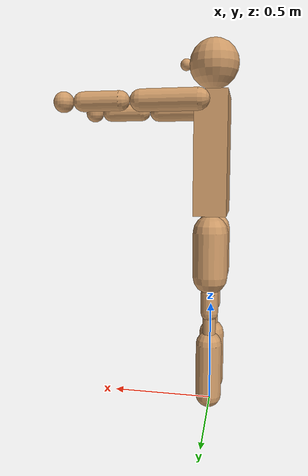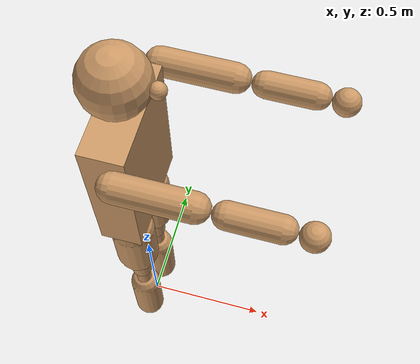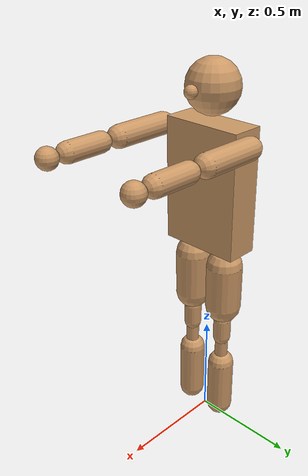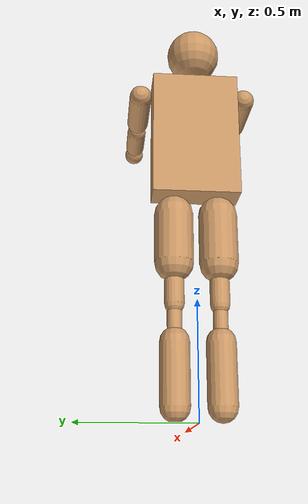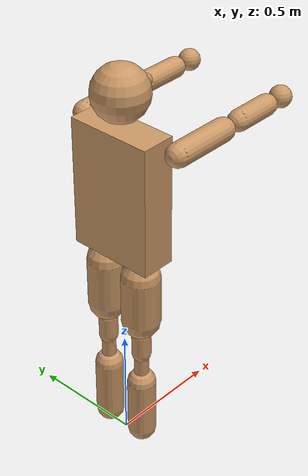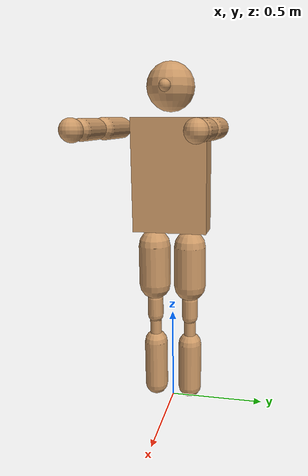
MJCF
<mujoco model='flyer'>
    <compiler inertiafromgeom='true' angle='degree'/>

    <default>
        <joint limited='true' damping='0'  armature='0' />
        <geom contype='1' conaffinity='1' condim='1' rgba='0.8 0.6 .4 1'
        	margin="0.001" solref=".02 1" solimp=".8 .8 .01" material="geom"/>
        <motor ctrlrange='-.4 .4' ctrllimited='true'/>
    </default>

    <option timestep='0.002' iterations="50" solver="PGS">
        <flag energy="enable"/>
    </option>

    <visual>
        <map fogstart="3" fogend="5" force="0.1"/>
        <quality shadowsize="2048"/>
    </visual>

    <asset>
        <texture type="skybox" builtin="gradient" width="100" height="100" rgb1=".4 .6 .8"
            rgb2="0 0 0"/>
        <texture name="texgeom" type="cube" builtin="flat" mark="cross" width="127" height="1278"
            rgb1="0.8 0.6 0.4" rgb2="0.8 0.6 0.4" markrgb="1 1 1" random="0.01"/>
        <texture name="texplane" type="2d" builtin="checker" rgb1=".2 .3 .4" rgb2=".1 0.15 0.2"
            width="100" height="100"/>

        <material name='MatPlane' reflectance='0.5' texture="texplane" texrepeat="1 1" texuniform="true"/>
        <material name='geom' texture="texgeom" texuniform="true"/>
        <material name='nose' rbga='1 0 0 1' />
    </asset>

    <worldbody>
        <body name='torso' pos='0 0 1.248'>
            <geom name='torso' type='box' size='0.0768 0.192 0.288'/>
            <geom name='head' type='sphere' pos='0 0 0.432' size='0.12' />
            <geom name='nose' type='sphere' pos='0.1344 0 0.432' size='0.0288' material='nose' />
            <body name='l_thigh' pos='0 0.096 -0.288'>
                <geom name='l_thigh_1' type='capsule' fromto='0 0 -0.08448    0 0 -0.29952' size='0.08448' />
                <geom name='l_thigh_2' type='capsule' fromto='0 0 -0.384    0 0 -0.48' size='0.04224' />
                <joint name='l_hip_y' type='hinge' pos='0 0 0' axis='0 -1 0' range='-45 130'     armature='0.0080' />
                <joint name='l_hip_x' type='hinge' pos='0 0 0' axis='1 0 0' range='-25 75'       armature='0.01' />
                <body name='l_lower_leg' pos='0 0.0 -0.48'>
                    <geom name='l_lower_leg_thick' type='capsule' fromto='0 0 -0.158976 0 0 -0.417024' size='0.062976' />
                    <geom name='l_lower_leg_thin' type='capsule' fromto='0 0 -0.031488 0 0 -0.158976' size='0.031488' />
                    <joint name='l_knee' type='hinge' pos='0 0 0' axis='0 1 0' range='0 160'       armature='0.01' />
                </body>
            </body>
            <body name='r_thigh' pos='0 -0.096 -0.288'>
                <geom name='r_thigh_1' type='capsule' fromto='0 0 -0.08448    0 0 -0.29952' size='0.08448' />
                <geom name='r_thigh_2' type='capsule' fromto='0 0 -0.384    0 0 -0.48' size='0.04224' />
                <joint name='r_hip_y' type='hinge' pos='0 0 0' axis='0 -1 0' range='-45 130'     armature='0.0080' />
                <joint name='r_hip_x' type='hinge' pos='0 0 0' axis='-1 0 0' range='-25 75'       armature='0.01' />
                <body name='r_lower_leg' pos='0 0.0 -0.48'>
                    <geom name='l_lower_leg_thick' type='capsule' fromto='0 0 -0.158976 0 0 -0.417024' size='0.062976' />
                    <geom name='l_lower_leg_thin' type='capsule' fromto='0 0 -0.031488 0 0 -0.158976' size='0.031488' />
                    <joint name='r_knee' type='hinge' pos='0 0 0' axis='0 1 0' range='0 160'       armature='0.01' />
                </body>
            </body>
            <body name='l_upper_arm' pos='0.0 0.24288 0.23712'>
                <geom name='l_upper_arm' type='capsule' fromto='0.05088 0 0 0.30912 0 0' size='0.05088' />
                <joint name='l_shoulder1' type='hinge' pos='0 0 0' axis='0 -1 0'  range='-120 105'     armature='0.0068' />
                <joint name='l_shoulder2' type='hinge' pos='0 0 0' axis='0 0 1' range='-65 95'      armature='0.0051' />
                <body name='l_lower_arm' pos='0.36 0.0 0.0'>
                    <geom name='l_lower_arm' type='capsule' fromto='0.04608 0 0 0.21792 0 0' size='0.04608' />
                    <joint name='l_elbow' type='hinge' pos='0 0 0' axis='0 -1 0'  range='0 160'     armature='0.0068' />
                    <body name='l_hand' pos='0.264 0 0' >
                        <geom name='l_hand' type='sphere' pos='0.048 0 0' size='0.048' />
                    </body>
                </body>
            </body>
            <body name='r_upper_arm' pos='0.0 -0.24288 0.23712'>
                <geom name='r_upper_arm' type='capsule' fromto='0.05088 0 0 0.30912 0 0' size='0.05088' />
                <joint name='r_shoulder1' type='hinge' pos='0 0 0' axis='0 -1 0' range='-120 105'     armature='0.0068' />
                <joint name='r_shoulder2' type='hinge' pos='0 0 0' axis='0  0 -1' range='-65 95'      armature='0.0051' />
                <body name='r_lower_arm' pos='0.36 0.0 0.0'>
                    <geom name='r_lower_arm' type='capsule' fromto='0.04608 0 0 0.21792 0 0' size='0.04608' />
                    <joint name='r_elbow' type='hinge' pos='0 0 0' axis='0 -1 0'  range='0 160'     armature='0.0068' />
                    <body name='r_hand' pos='0.264 0 0' >
                        <geom name='r_hand' type='sphere' pos='0.048 0 0' size='0.048' />
                    </body>
                </body>
            </body>
        </body>
    </worldbody>

</mujoco>
